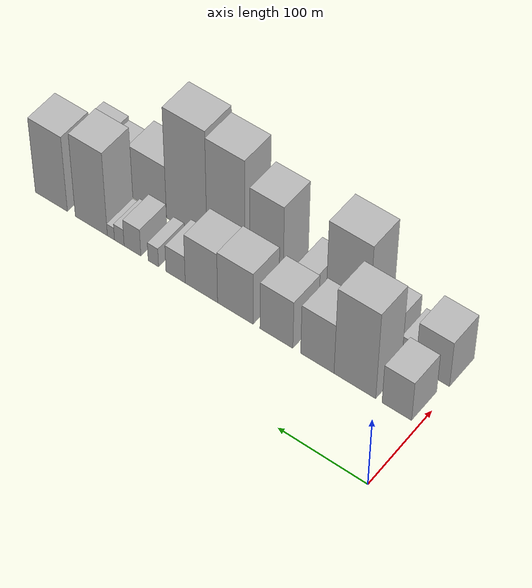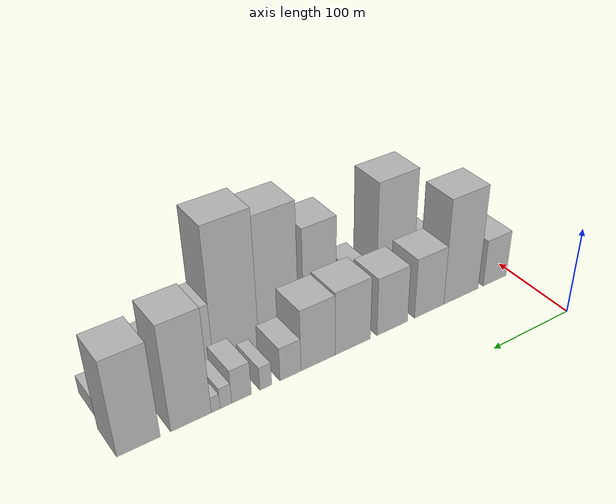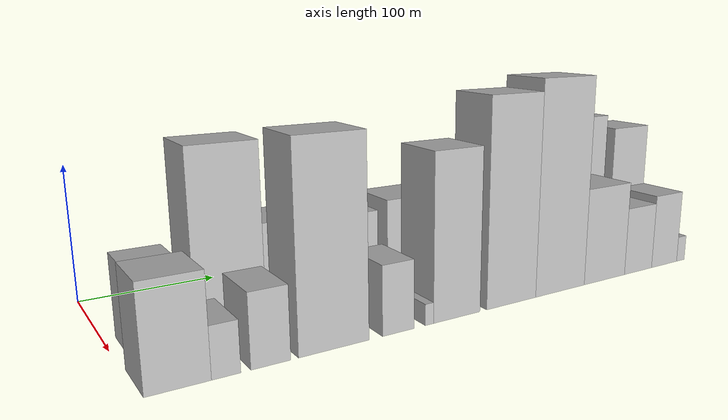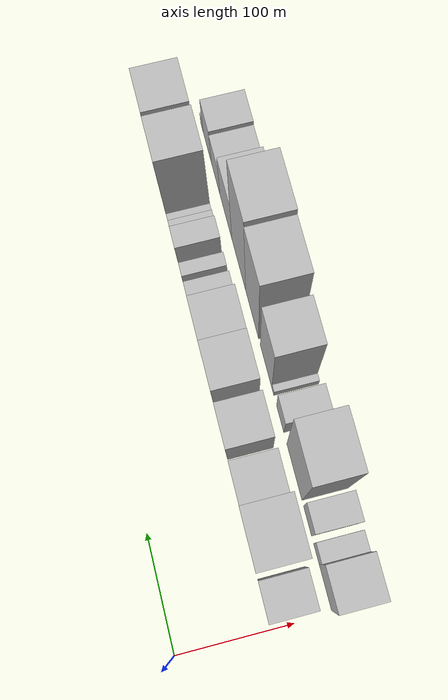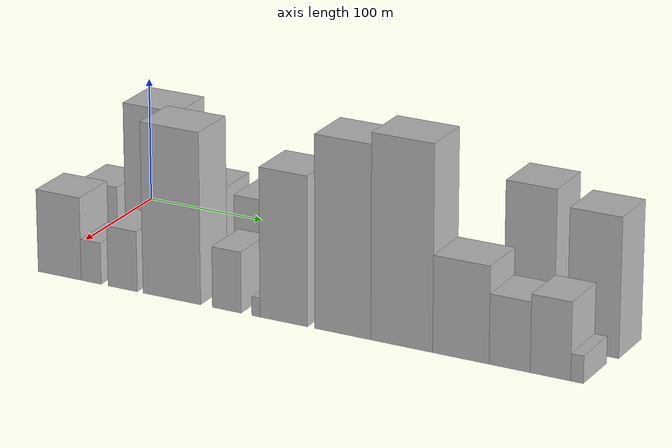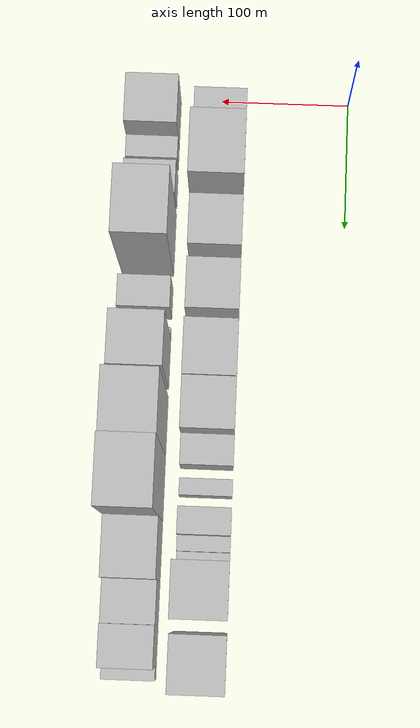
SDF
<sdf version="1.6">
 <world name="default">
  <model name="building_15">
   <static>1</static>
   <pose>100.0000 24.8274 0 0.000000 0.000000 0.000000</pose>
   <link name="link">
    <pose>0 0 28.50 0 0 0</pose>
    <collision name="collision"><geometry><box><size>40.0000 32.8956 57.0000</size></box></geometry></collision>
    <visual name="visual">
     <cast_shadows>0</cast_shadows>
     <geometry><box><size>40.0000 32.8956 57.0000</size></box></geometry>
     <material>
      <script>
       <uri>model://HANNAS_wall/materials/scripts</uri>
       <uri>model://HANNAS_wall/materials/textures</uri>
       <name>vrc/HANNAS_wall</name>
      </script>
     </material>
    </visual>
   </link>
  </model>
  <model name="building_16">
   <static>1</static>
   <pose>100.0000 71.8232 0 0.000000 0.000000 0.000000</pose>
   <link name="link">
    <pose>0 0 63.00 0 0 0</pose>
    <collision name="collision"><geometry><box><size>40.0000 47.0959 126.0000</size></box></geometry></collision>
    <visual name="visual">
     <cast_shadows>0</cast_shadows>
     <geometry><box><size>40.0000 47.0959 126.0000</size></box></geometry>
     <material>
      <script>
       <uri>model://HANNAS_wall/materials/scripts</uri>
       <uri>model://HANNAS_wall/materials/textures</uri>
       <name>vrc/HANNAS_wall</name>
      </script>
     </material>
    </visual>
   </link>
  </model>
  <model name="building_17">
   <static>1</static>
   <pose>100.0000 114.4610 0 0.000000 0.000000 0.000000</pose>
   <link name="link">
    <pose>0 0 36.00 0 0 0</pose>
    <collision name="collision"><geometry><box><size>40.0000 38.1798 72.0000</size></box></geometry></collision>
    <visual name="visual">
     <cast_shadows>0</cast_shadows>
     <geometry><box><size>40.0000 38.1798 72.0000</size></box></geometry>
     <material>
      <script>
       <uri>model://HANNAS_wall/materials/scripts</uri>
       <uri>model://HANNAS_wall/materials/textures</uri>
       <name>vrc/HANNAS_wall</name>
      </script>
     </material>
    </visual>
   </link>
  </model>
  <model name="building_18">
   <static>1</static>
   <pose>100.0000 161.6760 0 0.000000 0.000000 0.000000</pose>
   <link name="link">
    <pose>0 0 34.50 0 0 0</pose>
    <collision name="collision"><geometry><box><size>40.0000 38.2502 69.0000</size></box></geometry></collision>
    <visual name="visual">
     <cast_shadows>0</cast_shadows>
     <geometry><box><size>40.0000 38.2502 69.0000</size></box></geometry>
     <material>
      <script>
       <uri>model://HANNAS_wall/materials/scripts</uri>
       <uri>model://HANNAS_wall/materials/textures</uri>
       <name>vrc/HANNAS_wall</name>
      </script>
     </material>
    </visual>
   </link>
  </model>
  <model name="building_19">
   <static>1</static>
   <pose>100.0000 209.8443 0 0.000000 0.000000 0.000000</pose>
   <link name="link">
    <pose>0 0 37.50 0 0 0</pose>
    <collision name="collision"><geometry><box><size>40.0000 42.0864 75.0000</size></box></geometry></collision>
    <visual name="visual">
     <cast_shadows>0</cast_shadows>
     <geometry><box><size>40.0000 42.0864 75.0000</size></box></geometry>
     <material>
      <script>
       <uri>model://HANNAS_wall/materials/scripts</uri>
       <uri>model://HANNAS_wall/materials/textures</uri>
       <name>vrc/HANNAS_wall</name>
      </script>
     </material>
    </visual>
   </link>
  </model>
  <model name="building_20">
   <static>1</static>
   <pose>100.0000 250.2542 0 0.000000 0.000000 0.000000</pose>
   <link name="link">
    <pose>0 0 36.00 0 0 0</pose>
    <collision name="collision"><geometry><box><size>40.0000 38.7334 72.0000</size></box></geometry></collision>
    <visual name="visual">
     <cast_shadows>0</cast_shadows>
     <geometry><box><size>40.0000 38.7334 72.0000</size></box></geometry>
     <material>
      <script>
       <uri>model://HANNAS_wall/materials/scripts</uri>
       <uri>model://HANNAS_wall/materials/textures</uri>
       <name>vrc/HANNAS_wall</name>
      </script>
     </material>
    </visual>
   </link>
  </model>
  <model name="building_21">
   <static>1</static>
   <pose>100.0000 281.2755 0 0.000000 0.000000 0.000000</pose>
   <link name="link">
    <pose>0 0 19.50 0 0 0</pose>
    <collision name="collision"><geometry><box><size>40.0000 23.3093 39.0000</size></box></geometry></collision>
    <visual name="visual">
     <cast_shadows>0</cast_shadows>
     <geometry><box><size>40.0000 23.3093 39.0000</size></box></geometry>
     <material>
      <script>
       <uri>model://HANNAS_wall/materials/scripts</uri>
       <uri>model://HANNAS_wall/materials/textures</uri>
       <name>vrc/HANNAS_wall</name>
      </script>
     </material>
    </visual>
   </link>
  </model>
  <model name="building_22">
   <static>1</static>
   <pose>100.0000 308.2909 0 0.000000 0.000000 0.000000</pose>
   <link name="link">
    <pose>0 0 13.50 0 0 0</pose>
    <collision name="collision"><geometry><box><size>40.0000 12.7215 27.0000</size></box></geometry></collision>
    <visual name="visual">
     <cast_shadows>0</cast_shadows>
     <geometry><box><size>40.0000 12.7215 27.0000</size></box></geometry>
     <material>
      <script>
       <uri>model://HANNAS_wall/materials/scripts</uri>
       <uri>model://HANNAS_wall/materials/textures</uri>
       <name>vrc/HANNAS_wall</name>
      </script>
     </material>
    </visual>
   </link>
  </model>
  <model name="building_23">
   <static>1</static>
   <pose>100.0000 333.9572 0 0.000000 0.000000 0.000000</pose>
   <link name="link">
    <pose>0 0 19.50 0 0 0</pose>
    <collision name="collision"><geometry><box><size>40.0000 20.6112 39.0000</size></box></geometry></collision>
    <visual name="visual">
     <cast_shadows>0</cast_shadows>
     <geometry><box><size>40.0000 20.6112 39.0000</size></box></geometry>
     <material>
      <script>
       <uri>model://HANNAS_wall/materials/scripts</uri>
       <uri>model://HANNAS_wall/materials/textures</uri>
       <name>vrc/HANNAS_wall</name>
      </script>
     </material>
    </visual>
   </link>
  </model>
  <model name="building_24">
   <static>1</static>
   <pose>100.0000 350.2300 0 0.000000 0.000000 0.000000</pose>
   <link name="link">
    <pose>0 0 12.00 0 0 0</pose>
    <collision name="collision"><geometry><box><size>40.0000 11.9342 24.0000</size></box></geometry></collision>
    <visual name="visual">
     <cast_shadows>0</cast_shadows>
     <geometry><box><size>40.0000 11.9342 24.0000</size></box></geometry>
     <material>
      <script>
       <uri>model://HANNAS_wall/materials/scripts</uri>
       <uri>model://HANNAS_wall/materials/textures</uri>
       <name>vrc/HANNAS_wall</name>
      </script>
     </material>
    </visual>
   </link>
  </model>
  <model name="building_25">
   <static>1</static>
   <pose>100.0000 360.6059 0 0.000000 0.000000 0.000000</pose>
   <link name="link">
    <pose>0 0 9.00 0 0 0</pose>
    <collision name="collision"><geometry><box><size>40.0000 8.8177 18.0000</size></box></geometry></collision>
    <visual name="visual">
     <cast_shadows>0</cast_shadows>
     <geometry><box><size>40.0000 8.8177 18.0000</size></box></geometry>
     <material>
      <script>
       <uri>model://HANNAS_wall/materials/scripts</uri>
       <uri>model://HANNAS_wall/materials/textures</uri>
       <name>vrc/HANNAS_wall</name>
      </script>
     </material>
    </visual>
   </link>
  </model>
  <model name="building_26">
   <static>1</static>
   <pose>100.0000 385.1030 0 0.000000 0.000000 0.000000</pose>
   <link name="link">
    <pose>0 0 60.00 0 0 0</pose>
    <collision name="collision"><geometry><box><size>40.0000 40.1765 120.0000</size></box></geometry></collision>
    <visual name="visual">
     <cast_shadows>0</cast_shadows>
     <geometry><box><size>40.0000 40.1765 120.0000</size></box></geometry>
     <material>
      <script>
       <uri>model://HANNAS_wall/materials/scripts</uri>
       <uri>model://HANNAS_wall/materials/textures</uri>
       <name>vrc/HANNAS_wall</name>
      </script>
     </material>
    </visual>
   </link>
  </model>
  <model name="building_27">
   <static>1</static>
   <pose>100.0000 435.5275 0 0.000000 0.000000 0.000000</pose>
   <link name="link">
    <pose>0 0 54.00 0 0 0</pose>
    <collision name="collision"><geometry><box><size>40.0000 40.6724 108.0000</size></box></geometry></collision>
    <visual name="visual">
     <cast_shadows>0</cast_shadows>
     <geometry><box><size>40.0000 40.6724 108.0000</size></box></geometry>
     <material>
      <script>
       <uri>model://HANNAS_wall/materials/scripts</uri>
       <uri>model://HANNAS_wall/materials/textures</uri>
       <name>vrc/HANNAS_wall</name>
      </script>
     </material>
    </visual>
   </link>
  </model>
  <model name="building_38">
   <static>1</static>
   <pose>152.0000 21.2417 0 0.000000 0.000000 0.000000</pose>
   <link name="link">
    <pose>0 0 33.00 0 0 0</pose>
    <collision name="collision"><geometry><box><size>40.0000 37.7468 66.0000</size></box></geometry></collision>
    <visual name="visual">
     <cast_shadows>0</cast_shadows>
     <geometry><box><size>40.0000 37.7468 66.0000</size></box></geometry>
     <material>
      <script>
       <uri>model://HANNAS_wall/materials/scripts</uri>
       <uri>model://HANNAS_wall/materials/textures</uri>
       <name>vrc/HANNAS_wall</name>
      </script>
     </material>
    </visual>
   </link>
  </model>
  <model name="building_39">
   <static>1</static>
   <pose>152.0000 48.8367 0 0.000000 0.000000 0.000000</pose>
   <link name="link">
    <pose>0 0 16.50 0 0 0</pose>
    <collision name="collision"><geometry><box><size>40.0000 17.4432 33.0000</size></box></geometry></collision>
    <visual name="visual">
     <cast_shadows>0</cast_shadows>
     <geometry><box><size>40.0000 17.4432 33.0000</size></box></geometry>
     <material>
      <script>
       <uri>model://HANNAS_wall/materials/scripts</uri>
       <uri>model://HANNAS_wall/materials/textures</uri>
       <name>vrc/HANNAS_wall</name>
      </script>
     </material>
    </visual>
   </link>
  </model>
  <model name="building_40">
   <static>1</static>
   <pose>152.0000 76.2154 0 0.000000 0.000000 0.000000</pose>
   <link name="link">
    <pose>0 0 24.00 0 0 0</pose>
    <collision name="collision"><geometry><box><size>40.0000 25.3141 48.0000</size></box></geometry></collision>
    <visual name="visual">
     <cast_shadows>0</cast_shadows>
     <geometry><box><size>40.0000 25.3141 48.0000</size></box></geometry>
     <material>
      <script>
       <uri>model://HANNAS_wall/materials/scripts</uri>
       <uri>model://HANNAS_wall/materials/textures</uri>
       <name>vrc/HANNAS_wall</name>
      </script>
     </material>
    </visual>
   </link>
  </model>
  <model name="building_41">
   <static>1</static>
   <pose>152.0000 118.4470 0 0.000000 0.000000 0.000000</pose>
   <link name="link">
    <pose>0 0 67.50 0 0 0</pose>
    <collision name="collision"><geometry><box><size>40.0000 49.1491 135.0000</size></box></geometry></collision>
    <visual name="visual">
     <cast_shadows>0</cast_shadows>
     <geometry><box><size>40.0000 49.1491 135.0000</size></box></geometry>
     <material>
      <script>
       <uri>model://HANNAS_wall/materials/scripts</uri>
       <uri>model://HANNAS_wall/materials/textures</uri>
       <name>vrc/HANNAS_wall</name>
      </script>
     </material>
    </visual>
   </link>
  </model>
  <model name="building_42">
   <static>1</static>
   <pose>152.0000 165.1238 0 0.000000 0.000000 0.000000</pose>
   <link name="link">
    <pose>0 0 24.00 0 0 0</pose>
    <collision name="collision"><geometry><box><size>40.0000 24.2046 48.0000</size></box></geometry></collision>
    <visual name="visual">
     <cast_shadows>0</cast_shadows>
     <geometry><box><size>40.0000 24.2046 48.0000</size></box></geometry>
     <material>
      <script>
       <uri>model://HANNAS_wall/materials/scripts</uri>
       <uri>model://HANNAS_wall/materials/textures</uri>
       <name>vrc/HANNAS_wall</name>
      </script>
     </material>
    </visual>
   </link>
  </model>
  <model name="building_43">
   <static>1</static>
   <pose>152.0000 189.5663 0 0.000000 0.000000 0.000000</pose>
   <link name="link">
    <pose>0 0 7.50 0 0 0</pose>
    <collision name="collision"><geometry><box><size>40.0000 6.6804 15.0000</size></box></geometry></collision>
    <visual name="visual">
     <cast_shadows>0</cast_shadows>
     <geometry><box><size>40.0000 6.6804 15.0000</size></box></geometry>
     <material>
      <script>
       <uri>model://HANNAS_wall/materials/scripts</uri>
       <uri>model://HANNAS_wall/materials/textures</uri>
       <name>vrc/HANNAS_wall</name>
      </script>
     </material>
    </visual>
   </link>
  </model>
  <model name="building_44">
   <static>1</static>
   <pose>152.0000 212.5980 0 0.000000 0.000000 0.000000</pose>
   <link name="link">
    <pose>0 0 58.50 0 0 0</pose>
    <collision name="collision"><geometry><box><size>40.0000 39.3830 117.0000</size></box></geometry></collision>
    <visual name="visual">
     <cast_shadows>0</cast_shadows>
     <geometry><box><size>40.0000 39.3830 117.0000</size></box></geometry>
     <material>
      <script>
       <uri>model://HANNAS_wall/materials/scripts</uri>
       <uri>model://HANNAS_wall/materials/textures</uri>
       <name>vrc/HANNAS_wall</name>
      </script>
     </material>
    </visual>
   </link>
  </model>
  <model name="building_45">
   <static>1</static>
   <pose>152.0000 261.1766 0 0.000000 0.000000 0.000000</pose>
   <link name="link">
    <pose>0 0 75.00 0 0 0</pose>
    <collision name="collision"><geometry><box><size>40.0000 45.7742 150.0000</size></box></geometry></collision>
    <visual name="visual">
     <cast_shadows>0</cast_shadows>
     <geometry><box><size>40.0000 45.7742 150.0000</size></box></geometry>
     <material>
      <script>
       <uri>model://HANNAS_wall/materials/scripts</uri>
       <uri>model://HANNAS_wall/materials/textures</uri>
       <name>vrc/HANNAS_wall</name>
      </script>
     </material>
    </visual>
   </link>
  </model>
  <model name="building_46">
   <static>1</static>
   <pose>152.0000 308.8644 0 0.000000 0.000000 0.000000</pose>
   <link name="link">
    <pose>0 0 79.50 0 0 0</pose>
    <collision name="collision"><geometry><box><size>40.0000 49.6014 159.0000</size></box></geometry></collision>
    <visual name="visual">
     <cast_shadows>0</cast_shadows>
     <geometry><box><size>40.0000 49.6014 159.0000</size></box></geometry>
     <material>
      <script>
       <uri>model://HANNAS_wall/materials/scripts</uri>
       <uri>model://HANNAS_wall/materials/textures</uri>
       <name>vrc/HANNAS_wall</name>
      </script>
     </material>
    </visual>
   </link>
  </model>
  <model name="building_47">
   <static>1</static>
   <pose>152.0000 356.0248 0 0.000000 0.000000 0.000000</pose>
   <link name="link">
    <pose>0 0 37.50 0 0 0</pose>
    <collision name="collision"><geometry><box><size>40.0000 44.7195 75.0000</size></box></geometry></collision>
    <visual name="visual">
     <cast_shadows>0</cast_shadows>
     <geometry><box><size>40.0000 44.7195 75.0000</size></box></geometry>
     <material>
      <script>
       <uri>model://HANNAS_wall/materials/scripts</uri>
       <uri>model://HANNAS_wall/materials/textures</uri>
       <name>vrc/HANNAS_wall</name>
      </script>
     </material>
    </visual>
   </link>
  </model>
  <model name="building_48">
   <static>1</static>
   <pose>152.0000 394.4801 0 0.000000 0.000000 0.000000</pose>
   <link name="link">
    <pose>0 0 27.00 0 0 0</pose>
    <collision name="collision"><geometry><box><size>40.0000 32.1911 54.0000</size></box></geometry></collision>
    <visual name="visual">
     <cast_shadows>0</cast_shadows>
     <geometry><box><size>40.0000 32.1911 54.0000</size></box></geometry>
     <material>
      <script>
       <uri>model://HANNAS_wall/materials/scripts</uri>
       <uri>model://HANNAS_wall/materials/textures</uri>
       <name>vrc/HANNAS_wall</name>
      </script>
     </material>
    </visual>
   </link>
  </model>
  <model name="building_49">
   <static>1</static>
   <pose>152.0000 426.2602 0 0.000000 0.000000 0.000000</pose>
   <link name="link">
    <pose>0 0 30.00 0 0 0</pose>
    <collision name="collision"><geometry><box><size>40.0000 31.3691 60.0000</size></box></geometry></collision>
    <visual name="visual">
     <cast_shadows>0</cast_shadows>
     <geometry><box><size>40.0000 31.3691 60.0000</size></box></geometry>
     <material>
      <script>
       <uri>model://HANNAS_wall/materials/scripts</uri>
       <uri>model://HANNAS_wall/materials/textures</uri>
       <name>vrc/HANNAS_wall</name>
      </script>
     </material>
    </visual>
   </link>
  </model>
  <model name="building_50">
   <static>1</static>
   <pose>152.0000 446.8522 0 0.000000 0.000000 0.000000</pose>
   <link name="link">
    <pose>0 0 10.50 0 0 0</pose>
    <collision name="collision"><geometry><box><size>40.0000 9.8149 21.0000</size></box></geometry></collision>
    <visual name="visual">
     <cast_shadows>0</cast_shadows>
     <geometry><box><size>40.0000 9.8149 21.0000</size></box></geometry>
     <material>
      <script>
       <uri>model://HANNAS_wall/materials/scripts</uri>
       <uri>model://HANNAS_wall/materials/textures</uri>
       <name>vrc/HANNAS_wall</name>
      </script>
     </material>
    </visual>
   </link>
  </model>
 </world>
</sdf>
